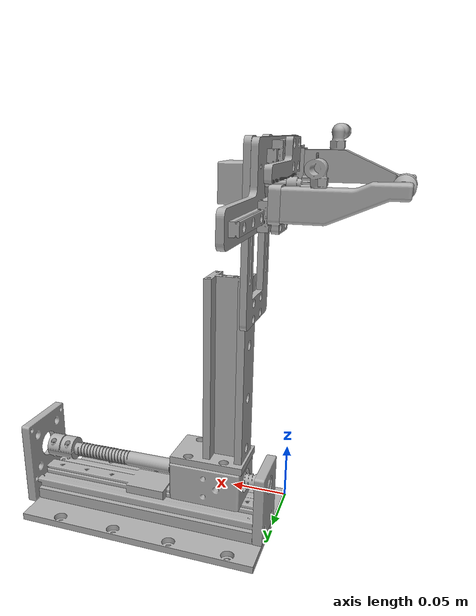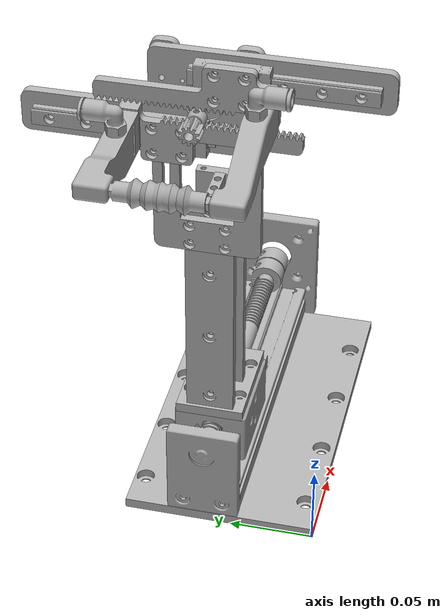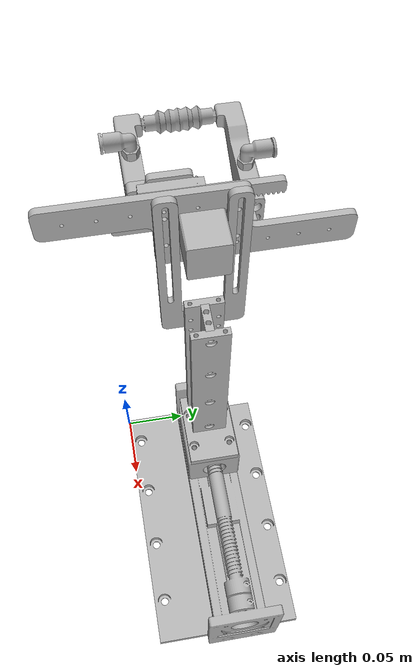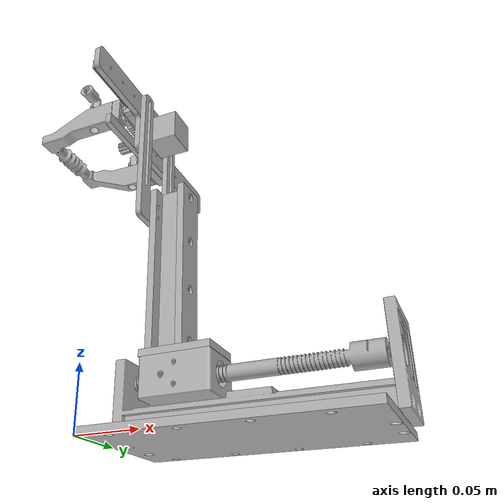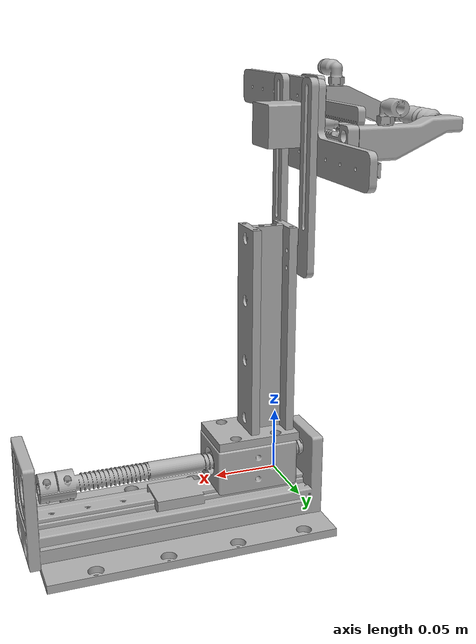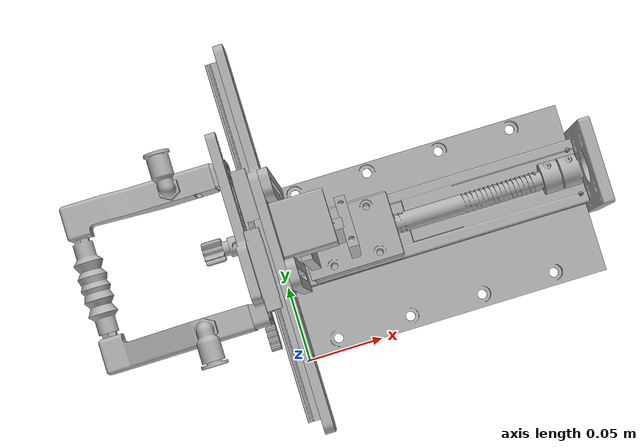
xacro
<?xml version="1.0" ?>
<robot name="석션V1" xmlns:xacro="http://www.ros.org/wiki/xacro">

<xacro:include filename="$(find 석션V1_description)/urdf/materials.xacro" />
<xacro:include filename="$(find 석션V1_description)/urdf/석션V1.trans" />
<xacro:include filename="$(find 석션V1_description)/urdf/석션V1.gazebo" />
<link name="base_link">
  <inertial>
    <origin xyz="0.10313572926425658 0.05740511872482914 0.002994936092208485" rpy="0 0 0"/>
    <mass value="0.13717421015617706"/>
    <inertia ixx="0.000147" iyy="0.000482" izz="0.000628" ixy="0.0" iyz="-0.0" ixz="-0.0"/>
  </inertial>
  <visual>
    <origin xyz="0 0 0" rpy="0 0 0"/>
    <geometry>
      <mesh filename="package://석션V1_description/meshes/base_link.stl" scale="0.001 0.001 0.001"/>
    </geometry>
    <material name="silver"/>
  </visual>
  <collision>
    <origin xyz="0 0 0" rpy="0 0 0"/>
    <geometry>
      <mesh filename="package://석션V1_description/meshes/base_link.stl" scale="0.001 0.001 0.001"/>
    </geometry>
  </collision>
</link>

<link name="LSM-NK174218-1204_100MM__1">
  <inertial>
    <origin xyz="-0.202 -0.0525 -0.006" rpy="0 0 0"/>
    <mass value="0.0"/>
    <inertia ixx="0.0" iyy="0.0" izz="0.0" ixy="0.0" iyz="0.0" ixz="0.0"/>
  </inertial>
  <visual>
    <origin xyz="-0.202 -0.0525 -0.006" rpy="0 0 0"/>
    <geometry>
      <mesh filename="package://석션V1_description/meshes/LSM-NK174218-1204_100MM__1.stl" scale="0.001 0.001 0.001"/>
    </geometry>
    <material name="silver"/>
  </visual>
  <collision>
    <origin xyz="-0.202 -0.0525 -0.006" rpy="0 0 0"/>
    <geometry>
      <mesh filename="package://석션V1_description/meshes/LSM-NK174218-1204_100MM__1.stl" scale="0.001 0.001 0.001"/>
    </geometry>
  </collision>
</link>

<link name="Dummy_1">
  <inertial>
    <origin xyz="-0.029439935915129944 -8.859579736508749e-14 -0.0014195721779239334" rpy="0 0 0"/>
    <mass value="0.06984284613696214"/>
    <inertia ixx="1.9e-05" iyy="2.6e-05" izz="3.2e-05" ixy="0.0" iyz="0.0" ixz="-0.0"/>
  </inertial>
  <visual>
    <origin xyz="-0.079095 -0.0675 -0.0505" rpy="0 0 0"/>
    <geometry>
      <mesh filename="package://석션V1_description/meshes/Dummy_1.stl" scale="0.001 0.001 0.001"/>
    </geometry>
    <material name="silver"/>
  </visual>
  <collision>
    <origin xyz="-0.079095 -0.0675 -0.0505" rpy="0 0 0"/>
    <geometry>
      <mesh filename="package://석션V1_description/meshes/Dummy_1.stl" scale="0.001 0.001 0.001"/>
    </geometry>
  </collision>
</link>

<link name="Hbeam_B_1">
  <inertial>
    <origin xyz="-0.015124903211779533 0.014999500000001845 0.0029953344101031204" rpy="0 0 0"/>
    <mass value="0.03369765389137962"/>
    <inertia ixx="4e-06" iyy="1e-05" izz="1.5e-05" ixy="0.0" iyz="0.0" ixz="0.0"/>
  </inertial>
  <visual>
    <origin xyz="-0.064535 -0.052561 -0.066" rpy="0 0 0"/>
    <geometry>
      <mesh filename="package://석션V1_description/meshes/Hbeam_B_1.stl" scale="0.001 0.001 0.001"/>
    </geometry>
    <material name="silver"/>
  </visual>
  <collision>
    <origin xyz="-0.064535 -0.052561 -0.066" rpy="0 0 0"/>
    <geometry>
      <mesh filename="package://석션V1_description/meshes/Hbeam_B_1.stl" scale="0.001 0.001 0.001"/>
    </geometry>
  </collision>
</link>

<link name="Hbeam_R_1">
  <inertial>
    <origin xyz="-6.529176891354946e-05 0.009999500000016592 0.07305195534622023" rpy="0 0 0"/>
    <mass value="0.0614860845247598"/>
    <inertia ixx="0.000111" iyy="0.000107" izz="4e-06" ixy="0.0" iyz="0.0" ixz="0.0"/>
  </inertial>
  <visual>
    <origin xyz="-0.023535 -0.057561 -0.072" rpy="0 0 0"/>
    <geometry>
      <mesh filename="package://석션V1_description/meshes/Hbeam_R_1.stl" scale="0.001 0.001 0.001"/>
    </geometry>
    <material name="silver"/>
  </visual>
  <collision>
    <origin xyz="-0.023535 -0.057561 -0.072" rpy="0 0 0"/>
    <geometry>
      <mesh filename="package://석션V1_description/meshes/Hbeam_R_1.stl" scale="0.001 0.001 0.001"/>
    </geometry>
  </collision>
</link>

<link name="Hbeam_L_1">
  <inertial>
    <origin xyz="6.446751616247942e-05 0.009999500000019576 0.07350000000000038" rpy="0 0 0"/>
    <mass value="0.06202100707724904"/>
    <inertia ixx="0.000113" iyy="0.000109" izz="4e-06" ixy="-0.0" iyz="0.0" ixz="-0.0"/>
  </inertial>
  <visual>
    <origin xyz="-0.049535 -0.057561 -0.072" rpy="0 0 0"/>
    <geometry>
      <mesh filename="package://석션V1_description/meshes/Hbeam_L_1.stl" scale="0.001 0.001 0.001"/>
    </geometry>
    <material name="silver"/>
  </visual>
  <collision>
    <origin xyz="-0.049535 -0.057561 -0.072" rpy="0 0 0"/>
    <geometry>
      <mesh filename="package://석션V1_description/meshes/Hbeam_L_1.stl" scale="0.001 0.001 0.001"/>
    </geometry>
  </collision>
</link>

<link name="Hbeam_M_1">
  <inertial>
    <origin xyz="-0.011000131125599083 -5.00000004649559e-07 0.06497441759252397" rpy="0 0 0"/>
    <mass value="0.0505323802088268"/>
    <inertia ixx="8.9e-05" iyy="9.1e-05" izz="2e-06" ixy="0.0" iyz="0.0" ixz="-0.0"/>
  </inertial>
  <visual>
    <origin xyz="-0.047535 -0.067561 -0.08" rpy="0 0 0"/>
    <geometry>
      <mesh filename="package://석션V1_description/meshes/Hbeam_M_1.stl" scale="0.001 0.001 0.001"/>
    </geometry>
    <material name="silver"/>
  </visual>
  <collision>
    <origin xyz="-0.047535 -0.067561 -0.08" rpy="0 0 0"/>
    <geometry>
      <mesh filename="package://석션V1_description/meshes/Hbeam_M_1.stl" scale="0.001 0.001 0.001"/>
    </geometry>
  </collision>
</link>

<link name="Adjust_Plate_01_1">
  <inertial>
    <origin xyz="-0.0024840168252906643 0.00999950000000964 0.03800307023231295" rpy="0 0 0"/>
    <mass value="0.017949673895531273"/>
    <inertia ixx="3.7e-05" iyy="2.9e-05" izz="8e-06" ixy="-0.0" iyz="0.0" ixz="0.0"/>
  </inertial>
  <visual>
    <origin xyz="-0.020535 -0.057561 -0.203" rpy="0 0 0"/>
    <geometry>
      <mesh filename="package://석션V1_description/meshes/Adjust_Plate_01_1.stl" scale="0.001 0.001 0.001"/>
    </geometry>
    <material name="silver"/>
  </visual>
  <collision>
    <origin xyz="-0.020535 -0.057561 -0.203" rpy="0 0 0"/>
    <geometry>
      <mesh filename="package://석션V1_description/meshes/Adjust_Plate_01_1.stl" scale="0.001 0.001 0.001"/>
    </geometry>
  </collision>
</link>

<link name="Plate_01_1">
  <inertial>
    <origin xyz="-0.002530910194084626 -0.022500000000085105 -0.011999646443647427" rpy="0 0 0"/>
    <mass value="0.03178366039933797"/>
    <inertia ixx="9.3e-05" iyy="1.1e-05" izz="8.1e-05" ixy="-0.0" iyz="1.9e-05" ixz="0.0"/>
  </inertial>
  <visual>
    <origin xyz="-0.015595 -0.09 -0.297939" rpy="0 0 0"/>
    <geometry>
      <mesh filename="package://석션V1_description/meshes/Plate_01_1.stl" scale="0.001 0.001 0.001"/>
    </geometry>
    <material name="silver"/>
  </visual>
  <collision>
    <origin xyz="-0.015595 -0.09 -0.297939" rpy="0 0 0"/>
    <geometry>
      <mesh filename="package://석션V1_description/meshes/Plate_01_1.stl" scale="0.001 0.001 0.001"/>
    </geometry>
  </collision>
</link>

<link name="Step_Motor_01_1">
  <inertial>
    <origin xyz="0.013256885062563183 0.011499999999964074 -0.011501025774098617" rpy="0 0 0"/>
    <mass value="0.02283716709935293"/>
    <inertia ixx="3e-06" iyy="3e-06" izz="3e-06" ixy="-0.0" iyz="0.0" ixz="-0.0"/>
  </inertial>
  <visual>
    <origin xyz="-0.014595 -0.056 -0.297439" rpy="0 0 0"/>
    <geometry>
      <mesh filename="package://석션V1_description/meshes/Step_Motor_01_1.stl" scale="0.001 0.001 0.001"/>
    </geometry>
    <material name="silver"/>
  </visual>
  <collision>
    <origin xyz="-0.014595 -0.056 -0.297439" rpy="0 0 0"/>
    <geometry>
      <mesh filename="package://석션V1_description/meshes/Step_Motor_01_1.stl" scale="0.001 0.001 0.001"/>
    </geometry>
  </collision>
</link>

<link name="m1.0000mm_z10,_P0_1">
  <inertial>
    <origin xyz="-0.010150951305551659 2.914335439641036e-16 -7.678034274988255e-05" rpy="0 0 0"/>
    <mass value="0.007878079458531428"/>
    <inertia ixx="0.0" iyy="0.0" izz="0.0" ixy="0.0" iyz="0.0" ixz="0.0"/>
  </inertial>
  <visual>
    <origin xyz="0.002405 -0.0675 -0.285689" rpy="0 0 0"/>
    <geometry>
      <mesh filename="package://석션V1_description/meshes/m1.0000mm_z10,_P0_1.stl" scale="0.001 0.001 0.001"/>
    </geometry>
    <material name="silver"/>
  </visual>
  <collision>
    <origin xyz="0.002405 -0.0675 -0.285689" rpy="0 0 0"/>
    <geometry>
      <mesh filename="package://석션V1_description/meshes/m1.0000mm_z10,_P0_1.stl" scale="0.001 0.001 0.001"/>
    </geometry>
  </collision>
</link>

<link name="R_E-SMLG9H-100-ES10_2_1">
  <inertial>
    <origin xyz="-0.001949912204840587 0.019950000000000204 -0.0035996464436480746" rpy="0 0 0"/>
    <mass value="0.0045990027220260965"/>
    <inertia ixx="1e-06" iyy="0.0" izz="1e-06" ixy="-0.0" iyz="0.0" ixz="-0.0"/>
  </inertial>
  <visual>
    <origin xyz="-0.006095 -0.06405 -0.271539" rpy="0 0 0"/>
    <geometry>
      <mesh filename="package://석션V1_description/meshes/R_E-SMLG9H-100-ES10_2_1.stl" scale="0.001 0.001 0.001"/>
    </geometry>
    <material name="silver"/>
  </visual>
  <collision>
    <origin xyz="-0.006095 -0.06405 -0.271539" rpy="0 0 0"/>
    <geometry>
      <mesh filename="package://석션V1_description/meshes/R_E-SMLG9H-100-ES10_2_1.stl" scale="0.001 0.001 0.001"/>
    </geometry>
  </collision>
</link>

<link name="L_E-SMLG9H-100-ES10_2_1">
  <inertial>
    <origin xyz="-0.0019499122048411395 -0.019950000000000107 -0.0035996464436468534" rpy="0 0 0"/>
    <mass value="0.004599002722026098"/>
    <inertia ixx="1e-06" iyy="0.0" izz="1e-06" ixy="-0.0" iyz="0.0" ixz="0.0"/>
  </inertial>
  <visual>
    <origin xyz="-0.006095 -0.07095 -0.307539" rpy="0 0 0"/>
    <geometry>
      <mesh filename="package://석션V1_description/meshes/L_E-SMLG9H-100-ES10_2_1.stl" scale="0.001 0.001 0.001"/>
    </geometry>
    <material name="silver"/>
  </visual>
  <collision>
    <origin xyz="-0.006095 -0.07095 -0.307539" rpy="0 0 0"/>
    <geometry>
      <mesh filename="package://석션V1_description/meshes/L_E-SMLG9H-100-ES10_2_1.stl" scale="0.001 0.001 0.001"/>
    </geometry>
  </collision>
</link>

<link name="m1.0000mm_z10_2">
  <inertial>
    <origin xyz="-0.0028749074552822597 0.0037433821239365728 -0.012517415818908528" rpy="0 0 0"/>
    <mass value="0.05913396581003897"/>
    <inertia ixx="4.9e-05" iyy="3e-06" izz="4.6e-05" ixy="-1e-06" iyz="2e-06" ixz="-0.0"/>
  </inertial>
  <visual>
    <origin xyz="-0.000595 -0.059 -0.311439" rpy="0 0 0"/>
    <geometry>
      <mesh filename="package://석션V1_description/meshes/m1.0000mm_z10_2.stl" scale="0.001 0.001 0.001"/>
    </geometry>
    <material name="silver"/>
  </visual>
  <collision>
    <origin xyz="-0.000595 -0.059 -0.311439" rpy="0 0 0"/>
    <geometry>
      <mesh filename="package://석션V1_description/meshes/m1.0000mm_z10_2.stl" scale="0.001 0.001 0.001"/>
    </geometry>
  </collision>
</link>

<link name="m1.0000mm_z10_1">
  <inertial>
    <origin xyz="-0.0028749074552832155 -0.019743382123934575 -0.002481877068385596" rpy="0 0 0"/>
    <mass value="0.05913396581003897"/>
    <inertia ixx="4.9e-05" iyy="3e-06" izz="4.6e-05" ixy="1e-06" iyz="2e-06" ixz="0.0"/>
  </inertial>
  <visual>
    <origin xyz="-0.000595 -0.092 -0.275439" rpy="0 0 0"/>
    <geometry>
      <mesh filename="package://석션V1_description/meshes/m1.0000mm_z10_1.stl" scale="0.001 0.001 0.001"/>
    </geometry>
    <material name="silver"/>
  </visual>
  <collision>
    <origin xyz="-0.000595 -0.092 -0.275439" rpy="0 0 0"/>
    <geometry>
      <mesh filename="package://석션V1_description/meshes/m1.0000mm_z10_1.stl" scale="0.001 0.001 0.001"/>
    </geometry>
  </collision>
</link>

<link name="Gripper_Tip_03_1">
  <inertial>
    <origin xyz="-0.035174848379837226 0.00022422011939543865 -0.008299155354764498" rpy="0 0 0"/>
    <mass value="0.014415306617990162"/>
    <inertia ixx="1e-06" iyy="7e-06" izz="7e-06" ixy="0.0" iyz="0.0" ixz="-1e-06"/>
  </inertial>
  <visual>
    <origin xyz="0.007405 -0.031 -0.300939" rpy="0 0 0"/>
    <geometry>
      <mesh filename="package://석션V1_description/meshes/Gripper_Tip_03_1.stl" scale="0.001 0.001 0.001"/>
    </geometry>
    <material name="silver"/>
  </visual>
  <collision>
    <origin xyz="0.007405 -0.031 -0.300939" rpy="0 0 0"/>
    <geometry>
      <mesh filename="package://석션V1_description/meshes/Gripper_Tip_03_1.stl" scale="0.001 0.001 0.001"/>
    </geometry>
  </collision>
</link>

<link name="Gripper_Tip_03_2">
  <inertial>
    <origin xyz="-0.03517484837983713 -0.000224220119392618 -0.001700137532529511" rpy="0 0 0"/>
    <mass value="0.014415306617990162"/>
    <inertia ixx="1e-06" iyy="7e-06" izz="7e-06" ixy="-0.0" iyz="0.0" ixz="1e-06"/>
  </inertial>
  <visual>
    <origin xyz="0.007405 -0.104 -0.280939" rpy="0 0 0"/>
    <geometry>
      <mesh filename="package://석션V1_description/meshes/Gripper_Tip_03_2.stl" scale="0.001 0.001 0.001"/>
    </geometry>
    <material name="silver"/>
  </visual>
  <collision>
    <origin xyz="0.007405 -0.104 -0.280939" rpy="0 0 0"/>
    <geometry>
      <mesh filename="package://석션V1_description/meshes/Gripper_Tip_03_2.stl" scale="0.001 0.001 0.001"/>
    </geometry>
  </collision>
</link>

<link name="GPL0601_2">
  <inertial>
    <origin xyz="3.5147029549958964e-07 0.004703017398615797 0.007455138342799705" rpy="0 0 0"/>
    <mass value="0.002127644917649094"/>
    <inertia ixx="0.0" iyy="0.0" izz="0.0" ixy="0.0" iyz="-0.0" ixz="0.0"/>
  </inertial>
  <visual>
    <origin xyz="0.029405 -0.1035 -0.286939" rpy="0 0 0"/>
    <geometry>
      <mesh filename="package://석션V1_description/meshes/GPL0601_2.stl" scale="0.001 0.001 0.001"/>
    </geometry>
    <material name="silver"/>
  </visual>
  <collision>
    <origin xyz="0.029405 -0.1035 -0.286939" rpy="0 0 0"/>
    <geometry>
      <mesh filename="package://석션V1_description/meshes/GPL0601_2.stl" scale="0.001 0.001 0.001"/>
    </geometry>
  </collision>
</link>

<link name="GPL0601_1">
  <inertial>
    <origin xyz="3.8627849890948696e-07 -0.004703017398613413 0.007455138342799539" rpy="0 0 0"/>
    <mass value="0.002127644917649094"/>
    <inertia ixx="0.0" iyy="0.0" izz="0.0" ixy="0.0" iyz="0.0" ixz="-0.0"/>
  </inertial>
  <visual>
    <origin xyz="0.029405 -0.0315 -0.306939" rpy="0 0 0"/>
    <geometry>
      <mesh filename="package://석션V1_description/meshes/GPL0601_1.stl" scale="0.001 0.001 0.001"/>
    </geometry>
    <material name="silver"/>
  </visual>
  <collision>
    <origin xyz="0.029405 -0.0315 -0.306939" rpy="0 0 0"/>
    <geometry>
      <mesh filename="package://석션V1_description/meshes/GPL0601_1.stl" scale="0.001 0.001 0.001"/>
    </geometry>
  </collision>
</link>

<link name="Suction_Cup_M5_0.8mm_15mm_2">
  <inertial>
    <origin xyz="3.6887376510252867e-07 -0.014120775509266326 3.5355635430445176e-07" rpy="0 0 0"/>
    <mass value="0.0028471031412212263"/>
    <inertia ixx="0.0" iyy="0.0" izz="0.0" ixy="-0.0" iyz="0.0" ixz="0.0"/>
  </inertial>
  <visual>
    <origin xyz="0.077905 -0.0925 -0.285939" rpy="0 0 0"/>
    <geometry>
      <mesh filename="package://석션V1_description/meshes/Suction_Cup_M5_0.8mm_15mm_2.stl" scale="0.001 0.001 0.001"/>
    </geometry>
    <material name="silver"/>
  </visual>
  <collision>
    <origin xyz="0.077905 -0.0925 -0.285939" rpy="0 0 0"/>
    <geometry>
      <mesh filename="package://석션V1_description/meshes/Suction_Cup_M5_0.8mm_15mm_2.stl" scale="0.001 0.001 0.001"/>
    </geometry>
  </collision>
</link>

<link name="Suction_Cup_M5_0.8mm_15mm_1">
  <inertial>
    <origin xyz="3.688737657270291e-07 0.014120775509270107 3.5355635158440535e-07" rpy="0 0 0"/>
    <mass value="0.0028471031412212263"/>
    <inertia ixx="0.0" iyy="0.0" izz="0.0" ixy="0.0" iyz="0.0" ixz="0.0"/>
  </inertial>
  <visual>
    <origin xyz="0.077905 -0.0425 -0.285939" rpy="0 0 0"/>
    <geometry>
      <mesh filename="package://석션V1_description/meshes/Suction_Cup_M5_0.8mm_15mm_1.stl" scale="0.001 0.001 0.001"/>
    </geometry>
    <material name="silver"/>
  </visual>
  <collision>
    <origin xyz="0.077905 -0.0425 -0.285939" rpy="0 0 0"/>
    <geometry>
      <mesh filename="package://석션V1_description/meshes/Suction_Cup_M5_0.8mm_15mm_1.stl" scale="0.001 0.001 0.001"/>
    </geometry>
  </collision>
</link>

<link name="L_E-SMLG9H-100-ES10_1_1">
  <inertial>
    <origin xyz="-0.003086839618129773 0.04000000000002009 3.5355635258360607e-07" rpy="0 0 0"/>
    <mass value="0.004923342166944256"/>
    <inertia ixx="4e-06" iyy="0.0" izz="4e-06" ixy="-0.0" iyz="0.0" ixz="0.0"/>
  </inertial>
  <visual>
    <origin xyz="-0.010595 0.015 -0.303939" rpy="0 0 0"/>
    <geometry>
      <mesh filename="package://석션V1_description/meshes/L_E-SMLG9H-100-ES10_1_1.stl" scale="0.001 0.001 0.001"/>
    </geometry>
    <material name="silver"/>
  </visual>
  <collision>
    <origin xyz="-0.010595 0.015 -0.303939" rpy="0 0 0"/>
    <geometry>
      <mesh filename="package://석션V1_description/meshes/L_E-SMLG9H-100-ES10_1_1.stl" scale="0.001 0.001 0.001"/>
    </geometry>
  </collision>
</link>

<link name="R_E-SMLG9H-100-ES10_1_1">
  <inertial>
    <origin xyz="-0.0030868396181275787 -0.03999999999999507 3.5355635269462837e-07" rpy="0 0 0"/>
    <mass value="0.004923342166943061"/>
    <inertia ixx="4e-06" iyy="0.0" izz="4e-06" ixy="-0.0" iyz="0.0" ixz="-0.0"/>
  </inertial>
  <visual>
    <origin xyz="-0.010595 -0.15 -0.267939" rpy="0 0 0"/>
    <geometry>
      <mesh filename="package://석션V1_description/meshes/R_E-SMLG9H-100-ES10_1_1.stl" scale="0.001 0.001 0.001"/>
    </geometry>
    <material name="silver"/>
  </visual>
  <collision>
    <origin xyz="-0.010595 -0.15 -0.267939" rpy="0 0 0"/>
    <geometry>
      <mesh filename="package://석션V1_description/meshes/R_E-SMLG9H-100-ES10_1_1.stl" scale="0.001 0.001 0.001"/>
    </geometry>
  </collision>
</link>

<joint name="강체 1" type="fixed">
  <origin xyz="0.202 0.0525 0.006" rpy="0 0 0"/>
  <parent link="base_link"/>
  <child link="LSM-NK174218-1204_100MM__1"/>
</joint>

<joint name="슬라이더 2" type="prismatic">
  <origin xyz="-0.122905 0.015 0.0445" rpy="0 0 0"/>
  <parent link="LSM-NK174218-1204_100MM__1"/>
  <child link="Dummy_1"/>
  <axis xyz="1.0 0.0 -0.0"/>
  <limit upper="0.0" lower="0.0" effort="100" velocity="100"/>
</joint>

<joint name="강체 3" type="fixed">
  <origin xyz="-0.01456 -0.014939 0.0155" rpy="0 0 0"/>
  <parent link="Dummy_1"/>
  <child link="Hbeam_B_1"/>
</joint>

<joint name="강체 4" type="fixed">
  <origin xyz="-0.041 0.005 0.006" rpy="0 0 0"/>
  <parent link="Hbeam_B_1"/>
  <child link="Hbeam_R_1"/>
</joint>

<joint name="강체 5" type="fixed">
  <origin xyz="-0.015 0.005 0.006" rpy="0 0 0"/>
  <parent link="Hbeam_B_1"/>
  <child link="Hbeam_L_1"/>
</joint>

<joint name="강체 6" type="fixed">
  <origin xyz="-0.002 0.01 0.008" rpy="0 0 0"/>
  <parent link="Hbeam_L_1"/>
  <child link="Hbeam_M_1"/>
</joint>

<joint name="강체 7" type="fixed">
  <origin xyz="-0.003 0.0 0.131" rpy="0 0 0"/>
  <parent link="Hbeam_R_1"/>
  <child link="Adjust_Plate_01_1"/>
</joint>

<joint name="강체 8" type="fixed">
  <origin xyz="-0.00494 0.032439 0.094939" rpy="0 0 0"/>
  <parent link="Adjust_Plate_01_1"/>
  <child link="Plate_01_1"/>
</joint>

<joint name="강체 9" type="fixed">
  <origin xyz="-0.001 -0.034 -0.0005" rpy="0 0 0"/>
  <parent link="Plate_01_1"/>
  <child link="Step_Motor_01_1"/>
</joint>

<joint name="강체 10" type="fixed">
  <origin xyz="-0.017 0.0115 -0.01175" rpy="0 0 0"/>
  <parent link="Step_Motor_01_1"/>
  <child link="m1.0000mm_z10,_P0_1"/>
</joint>

<joint name="슬라이더 11" type="prismatic">
  <origin xyz="-0.0045 -0.08595 0.0036" rpy="0 0 0"/>
  <parent link="R_E-SMLG9H-100-ES10_1_1"/>
  <child link="R_E-SMLG9H-100-ES10_2_1"/>
  <axis xyz="-0.0 -1.0 -0.0"/>
  <limit upper="0.0" lower="0.0" effort="100" velocity="100"/>
</joint>

<joint name="슬라이더 12" type="prismatic">
  <origin xyz="-0.0045 0.08595 0.0036" rpy="0 0 0"/>
  <parent link="L_E-SMLG9H-100-ES10_1_1"/>
  <child link="L_E-SMLG9H-100-ES10_2_1"/>
  <axis xyz="0.0 1.0 0.0"/>
  <limit upper="0.0" lower="0.0" effort="100" velocity="100"/>
</joint>

<joint name="강체 13" type="fixed">
  <origin xyz="-0.0055 -0.01195 0.0039" rpy="0 0 0"/>
  <parent link="L_E-SMLG9H-100-ES10_2_1"/>
  <child link="m1.0000mm_z10_2"/>
</joint>

<joint name="강체 14" type="fixed">
  <origin xyz="-0.0055 0.02795 0.0039" rpy="0 0 0"/>
  <parent link="R_E-SMLG9H-100-ES10_2_1"/>
  <child link="m1.0000mm_z10_1"/>
</joint>

<joint name="강체 15" type="fixed">
  <origin xyz="-0.008 -0.028 -0.0105" rpy="0 0 0"/>
  <parent link="m1.0000mm_z10_2"/>
  <child link="Gripper_Tip_03_1"/>
</joint>

<joint name="강체 16" type="fixed">
  <origin xyz="-0.008 0.012 0.0055" rpy="0 0 0"/>
  <parent link="m1.0000mm_z10_1"/>
  <child link="Gripper_Tip_03_2"/>
</joint>

<joint name="강체 17" type="fixed">
  <origin xyz="-0.022 -0.0005 0.006" rpy="0 0 0"/>
  <parent link="Gripper_Tip_03_2"/>
  <child link="GPL0601_2"/>
</joint>

<joint name="강체 18" type="fixed">
  <origin xyz="-0.022 0.0005 0.006" rpy="0 0 0"/>
  <parent link="Gripper_Tip_03_1"/>
  <child link="GPL0601_1"/>
</joint>

<joint name="강체 19" type="fixed">
  <origin xyz="-0.0705 -0.0115 0.005" rpy="0 0 0"/>
  <parent link="Gripper_Tip_03_2"/>
  <child link="Suction_Cup_M5_0.8mm_15mm_2"/>
</joint>

<joint name="강체 20" type="fixed">
  <origin xyz="-0.0705 0.0115 -0.015" rpy="0 0 0"/>
  <parent link="Gripper_Tip_03_1"/>
  <child link="Suction_Cup_M5_0.8mm_15mm_1"/>
</joint>

<joint name="강체 21" type="fixed">
  <origin xyz="-0.005 -0.105 0.006" rpy="0 0 0"/>
  <parent link="Plate_01_1"/>
  <child link="L_E-SMLG9H-100-ES10_1_1"/>
</joint>

<joint name="강체 22" type="fixed">
  <origin xyz="-0.005 0.06 -0.03" rpy="0 0 0"/>
  <parent link="Plate_01_1"/>
  <child link="R_E-SMLG9H-100-ES10_1_1"/>
</joint>

</robot>

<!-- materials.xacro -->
<robot name="석션V1" xmlns:xacro="http://www.ros.org/wiki/xacro" >

<material name="silver">
  <color rgba="0.700 0.700 0.700 1.000"/>
</material>

</robot>

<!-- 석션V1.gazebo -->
<robot name="석션V1" xmlns:xacro="http://www.ros.org/wiki/xacro" >

<xacro:property name="body_color" value="Gazebo/Silver" />

<gazebo>
  <plugin name="control" filename="libgazebo_ros_control.so"/>
</gazebo>
<gazebo reference="base_link">
  <material>${body_color}</material>
  <mu1>0.2</mu1>
  <mu2>0.2</mu2>
  <selfCollide>true</selfCollide>
  <gravity>true</gravity>
</gazebo>

<gazebo reference="LSM-NK174218-1204_100MM__1">
  <material>${body_color}</material>
  <mu1>0.2</mu1>
  <mu2>0.2</mu2>
  <selfCollide>true</selfCollide>
</gazebo>

<gazebo reference="Dummy_1">
  <material>${body_color}</material>
  <mu1>0.2</mu1>
  <mu2>0.2</mu2>
  <selfCollide>true</selfCollide>
</gazebo>

<gazebo reference="Hbeam_B_1">
  <material>${body_color}</material>
  <mu1>0.2</mu1>
  <mu2>0.2</mu2>
  <selfCollide>true</selfCollide>
</gazebo>

<gazebo reference="Hbeam_R_1">
  <material>${body_color}</material>
  <mu1>0.2</mu1>
  <mu2>0.2</mu2>
  <selfCollide>true</selfCollide>
</gazebo>

<gazebo reference="Hbeam_L_1">
  <material>${body_color}</material>
  <mu1>0.2</mu1>
  <mu2>0.2</mu2>
  <selfCollide>true</selfCollide>
</gazebo>

<gazebo reference="Hbeam_M_1">
  <material>${body_color}</material>
  <mu1>0.2</mu1>
  <mu2>0.2</mu2>
  <selfCollide>true</selfCollide>
</gazebo>

<gazebo reference="Adjust_Plate_01_1">
  <material>${body_color}</material>
  <mu1>0.2</mu1>
  <mu2>0.2</mu2>
  <selfCollide>true</selfCollide>
</gazebo>

<gazebo reference="Plate_01_1">
  <material>${body_color}</material>
  <mu1>0.2</mu1>
  <mu2>0.2</mu2>
  <selfCollide>true</selfCollide>
</gazebo>

<gazebo reference="Step_Motor_01_1">
  <material>${body_color}</material>
  <mu1>0.2</mu1>
  <mu2>0.2</mu2>
  <selfCollide>true</selfCollide>
</gazebo>

<gazebo reference="m1.0000mm_z10,_P0_1">
  <material>${body_color}</material>
  <mu1>0.2</mu1>
  <mu2>0.2</mu2>
  <selfCollide>true</selfCollide>
</gazebo>

<gazebo reference="R_E-SMLG9H-100-ES10_2_1">
  <material>${body_color}</material>
  <mu1>0.2</mu1>
  <mu2>0.2</mu2>
  <selfCollide>true</selfCollide>
</gazebo>

<gazebo reference="L_E-SMLG9H-100-ES10_2_1">
  <material>${body_color}</material>
  <mu1>0.2</mu1>
  <mu2>0.2</mu2>
  <selfCollide>true</selfCollide>
</gazebo>

<gazebo reference="m1.0000mm_z10_2">
  <material>${body_color}</material>
  <mu1>0.2</mu1>
  <mu2>0.2</mu2>
  <selfCollide>true</selfCollide>
</gazebo>

<gazebo reference="m1.0000mm_z10_1">
  <material>${body_color}</material>
  <mu1>0.2</mu1>
  <mu2>0.2</mu2>
  <selfCollide>true</selfCollide>
</gazebo>

<gazebo reference="Gripper_Tip_03_1">
  <material>${body_color}</material>
  <mu1>0.2</mu1>
  <mu2>0.2</mu2>
  <selfCollide>true</selfCollide>
</gazebo>

<gazebo reference="Gripper_Tip_03_2">
  <material>${body_color}</material>
  <mu1>0.2</mu1>
  <mu2>0.2</mu2>
  <selfCollide>true</selfCollide>
</gazebo>

<gazebo reference="GPL0601_2">
  <material>${body_color}</material>
  <mu1>0.2</mu1>
  <mu2>0.2</mu2>
  <selfCollide>true</selfCollide>
</gazebo>

<gazebo reference="GPL0601_1">
  <material>${body_color}</material>
  <mu1>0.2</mu1>
  <mu2>0.2</mu2>
  <selfCollide>true</selfCollide>
</gazebo>

<gazebo reference="Suction_Cup_M5_0.8mm_15mm_2">
  <material>${body_color}</material>
  <mu1>0.2</mu1>
  <mu2>0.2</mu2>
  <selfCollide>true</selfCollide>
</gazebo>

<gazebo reference="Suction_Cup_M5_0.8mm_15mm_1">
  <material>${body_color}</material>
  <mu1>0.2</mu1>
  <mu2>0.2</mu2>
  <selfCollide>true</selfCollide>
</gazebo>

<gazebo reference="L_E-SMLG9H-100-ES10_1_1">
  <material>${body_color}</material>
  <mu1>0.2</mu1>
  <mu2>0.2</mu2>
  <selfCollide>true</selfCollide>
</gazebo>

<gazebo reference="R_E-SMLG9H-100-ES10_1_1">
  <material>${body_color}</material>
  <mu1>0.2</mu1>
  <mu2>0.2</mu2>
  <selfCollide>true</selfCollide>
</gazebo>

</robot>
